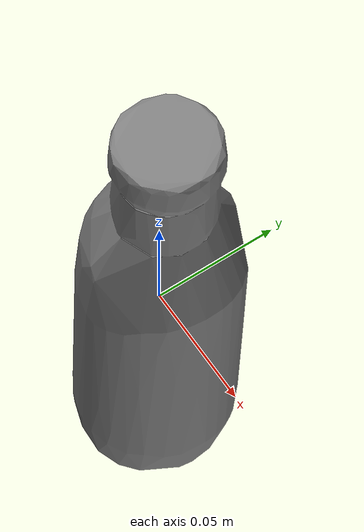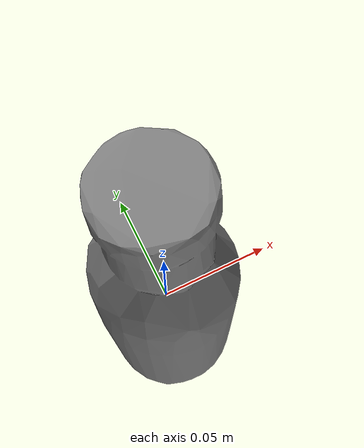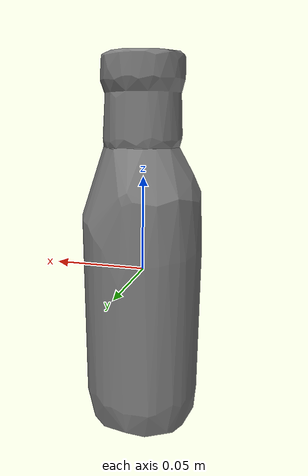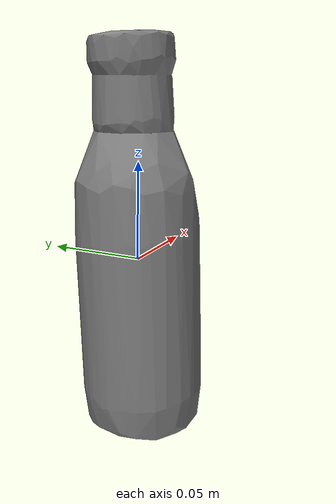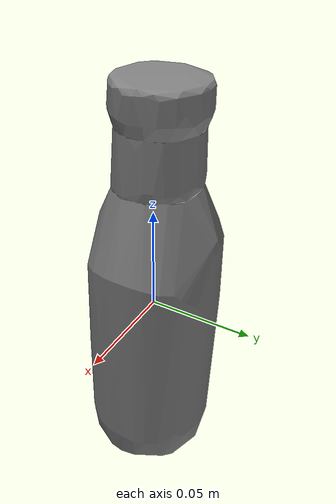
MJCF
<mujoco model="bottle_Weston_No_33_Signature_Sausage_Tonic_12_fl_oz_M">
  <default>
    <default class="visual">
      <geom group="2" type="mesh" contype="0" conaffinity="0" />
    </default>
    <default class="collision">
      <geom group="3" type="mesh" />
    </default>
  </default>
  <asset>
    <mesh file="bottle_Weston_No_33_Signature_Sausage_Tonic_12_fl_oz_M.stl" />
    <mesh file="bottle_Weston_No_33_Signature_Sausage_Tonic_12_fl_oz_M_collision_0.stl" />
    <mesh file="bottle_Weston_No_33_Signature_Sausage_Tonic_12_fl_oz_M_collision_1.stl" />
    <mesh file="bottle_Weston_No_33_Signature_Sausage_Tonic_12_fl_oz_M_collision_2.stl" />
    <mesh file="bottle_Weston_No_33_Signature_Sausage_Tonic_12_fl_oz_M_collision_3.stl" />
    <mesh file="bottle_Weston_No_33_Signature_Sausage_Tonic_12_fl_oz_M_collision_4.stl" />
    <mesh file="bottle_Weston_No_33_Signature_Sausage_Tonic_12_fl_oz_M_collision_5.stl" />
    <mesh file="bottle_Weston_No_33_Signature_Sausage_Tonic_12_fl_oz_M_collision_6.stl" />
    <mesh file="bottle_Weston_No_33_Signature_Sausage_Tonic_12_fl_oz_M_collision_7.stl" />
    <mesh file="bottle_Weston_No_33_Signature_Sausage_Tonic_12_fl_oz_M_collision_8.stl" />
    <mesh file="bottle_Weston_No_33_Signature_Sausage_Tonic_12_fl_oz_M_collision_9.stl" />
    <mesh file="bottle_Weston_No_33_Signature_Sausage_Tonic_12_fl_oz_M_collision_10.stl" />
    <mesh file="bottle_Weston_No_33_Signature_Sausage_Tonic_12_fl_oz_M_collision_11.stl" />
    <mesh file="bottle_Weston_No_33_Signature_Sausage_Tonic_12_fl_oz_M_collision_12.stl" />
    <mesh file="bottle_Weston_No_33_Signature_Sausage_Tonic_12_fl_oz_M_collision_13.stl" />
    <mesh file="bottle_Weston_No_33_Signature_Sausage_Tonic_12_fl_oz_M_collision_14.stl" />
    <mesh file="bottle_Weston_No_33_Signature_Sausage_Tonic_12_fl_oz_M_collision_15.stl" />
  </asset>
  <worldbody>
    <body name="bottle_Weston_No_33_Signature_Sausage_Tonic_12_fl_oz_M">
      <geom mesh="bottle_Weston_No_33_Signature_Sausage_Tonic_12_fl_oz_M" class="visual" />
      <geom mesh="bottle_Weston_No_33_Signature_Sausage_Tonic_12_fl_oz_M_collision_0" class="collision" />
      <geom mesh="bottle_Weston_No_33_Signature_Sausage_Tonic_12_fl_oz_M_collision_1" class="collision" />
      <geom mesh="bottle_Weston_No_33_Signature_Sausage_Tonic_12_fl_oz_M_collision_2" class="collision" />
      <geom mesh="bottle_Weston_No_33_Signature_Sausage_Tonic_12_fl_oz_M_collision_3" class="collision" />
      <geom mesh="bottle_Weston_No_33_Signature_Sausage_Tonic_12_fl_oz_M_collision_4" class="collision" />
      <geom mesh="bottle_Weston_No_33_Signature_Sausage_Tonic_12_fl_oz_M_collision_5" class="collision" />
      <geom mesh="bottle_Weston_No_33_Signature_Sausage_Tonic_12_fl_oz_M_collision_6" class="collision" />
      <geom mesh="bottle_Weston_No_33_Signature_Sausage_Tonic_12_fl_oz_M_collision_7" class="collision" />
      <geom mesh="bottle_Weston_No_33_Signature_Sausage_Tonic_12_fl_oz_M_collision_8" class="collision" />
      <geom mesh="bottle_Weston_No_33_Signature_Sausage_Tonic_12_fl_oz_M_collision_9" class="collision" />
      <geom mesh="bottle_Weston_No_33_Signature_Sausage_Tonic_12_fl_oz_M_collision_10" class="collision" />
      <geom mesh="bottle_Weston_No_33_Signature_Sausage_Tonic_12_fl_oz_M_collision_11" class="collision" />
      <geom mesh="bottle_Weston_No_33_Signature_Sausage_Tonic_12_fl_oz_M_collision_12" class="collision" />
      <geom mesh="bottle_Weston_No_33_Signature_Sausage_Tonic_12_fl_oz_M_collision_13" class="collision" />
      <geom mesh="bottle_Weston_No_33_Signature_Sausage_Tonic_12_fl_oz_M_collision_14" class="collision" />
      <geom mesh="bottle_Weston_No_33_Signature_Sausage_Tonic_12_fl_oz_M_collision_15" class="collision" />
    </body>
  </worldbody>
</mujoco>
